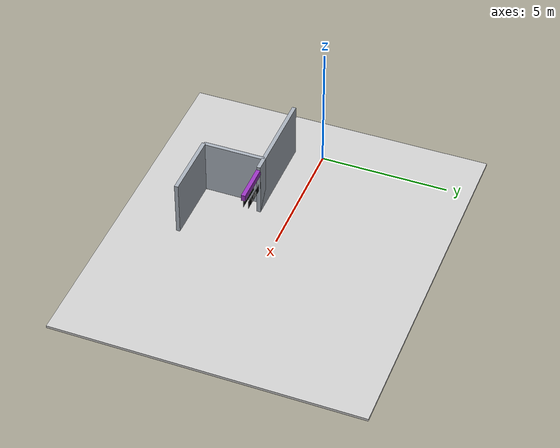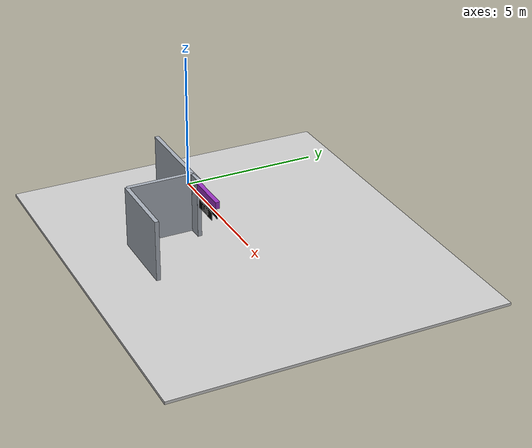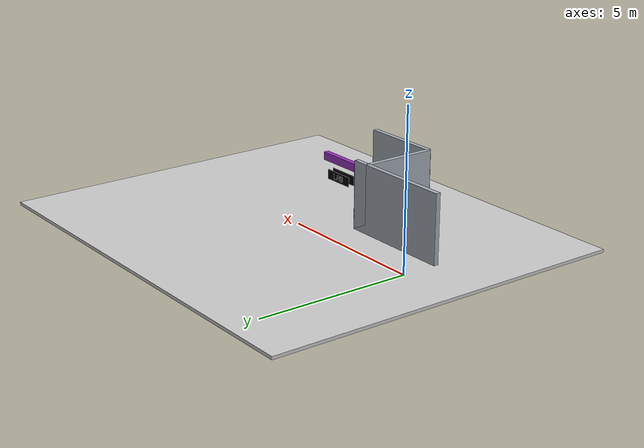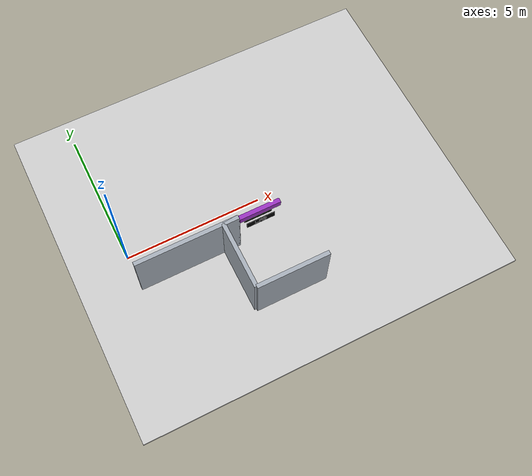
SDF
<sdf version="1.9">
 <world name="default">
  <model name="ground_plane">
   <static>true</static>
   <pose>4.95 0 -0.05 0 0 0</pose>
   <link name="body">
    <collision name="collision"><geometry><box><size>13.9 12 0.1</size></box></geometry></collision>
    <visual name="visual">
     <geometry><box><size>13.9 12 0.1</size></box></geometry>
     <material><ambient>0.8 0.8 0.8 1</ambient><diffuse>0.8 0.8 0.8 1</diffuse></material>
    </visual>
   </link>
  </model>
  <model name="hall_-1_1">
   <static>true</static>
   <pose>1.85 -1.2 1.1 0 0 0</pose>
   <link name="body">
    <collision name="collision"><geometry><box><size>3.7 0.15 2.2</size></box></geometry></collision>
    <visual name="visual">
     <geometry><box><size>3.7 0.15 2.2</size></box></geometry>
     <material><ambient>0.65 0.68 0.72 1</ambient><diffuse>0.65 0.68 0.72 1</diffuse></material>
    </visual>
   </link>
  </model>
  <model name="room_-1_1_-1">
   <static>true</static>
   <pose>3.1500000000000004 -2.4 1.1 0 0 0</pose>
   <link name="body">
    <collision name="collision"><geometry><box><size>0.15 2.4 2.2</size></box></geometry></collision>
    <visual name="visual">
     <geometry><box><size>0.15 2.4 2.2</size></box></geometry>
     <material><ambient>0.65 0.68 0.72 1</ambient><diffuse>0.65 0.68 0.72 1</diffuse></material>
    </visual>
   </link>
  </model>
  <model name="room_end_-1_1">
   <static>true</static>
   <pose>4.45 -3.5999999999999996 1.1 0 0 0</pose>
   <link name="body">
    <collision name="collision"><geometry><box><size>2.6 0.15 2.2</size></box></geometry></collision>
    <visual name="visual">
     <geometry><box><size>2.6 0.15 2.2</size></box></geometry>
     <material><ambient>0.65 0.68 0.72 1</ambient><diffuse>0.65 0.68 0.72 1</diffuse></material>
    </visual>
   </link>
  </model>
  <model name="jamb_-1_1_-1">
   <static>true</static>
   <pose>3.4250000000000003 -1.2 1.1 0 0 0</pose>
   <link name="body">
    <collision name="collision"><geometry><box><size>0.55 0.15 2.2</size></box></geometry></collision>
    <visual name="visual">
     <geometry><box><size>0.55 0.15 2.2</size></box></geometry>
     <material><ambient>0.65 0.68 0.72 1</ambient><diffuse>0.65 0.68 0.72 1</diffuse></material>
    </visual>
   </link>
  </model>
  <model name="r3geo_base_r007_right_1_lintel">
   <static>true</static>
   <pose>4.45 -1.2 1.95 0 0 0</pose>
   <link name="body">
    <collision name="collision"><geometry><box><size>1.5 0.16 0.25</size></box></geometry></collision>
    <visual name="visual">
     <geometry><box><size>1.5 0.16 0.25</size></box></geometry>
     <material><ambient>0.6 0.2 0.75 1</ambient><diffuse>0.6 0.2 0.75 1</diffuse></material>
    </visual>
   </link>
  </model>
  <model name="readable_r3geo_base_r007_right_1_entrance_corridor">
   <static>true</static>
   <pose>4.45 -1.1 1.43 0 0 3.14159265359</pose>
   <link name="lettering">
    <visual name="backboard">
     <geometry><box><size>1.02 0.018 0.3</size></box></geometry>
     <material>
      <ambient>.015 .015 .015 1</ambient>
      <diffuse>.015 .015 .015 1</diffuse>
      <emissive>.015 .015 .015 1</emissive>
     </material>
     <cast_shadows>false</cast_shadows>
    </visual>
    <visual name="letter_0_0_0">
     <pose>-0.208 -0.014 0.078 0 0 0</pose>
     <geometry><box><size>0.024439999999999996 0.008 0.024439999999999996</size></box></geometry>
     <material>
      <ambient>.96 .96 .96 1</ambient>
      <diffuse>.96 .96 .96 1</diffuse>
      <emissive>.96 .96 .96 1</emissive>
     </material>
     <cast_shadows>false</cast_shadows>
    </visual>
    <visual name="letter_0_1_0">
     <pose>-0.208 -0.014 0.052 0 0 0</pose>
     <geometry><box><size>0.024439999999999996 0.008 0.024439999999999996</size></box></geometry>
     <material>
      <ambient>.96 .96 .96 1</ambient>
      <diffuse>.96 .96 .96 1</diffuse>
      <emissive>.96 .96 .96 1</emissive>
     </material>
     <cast_shadows>false</cast_shadows>
    </visual>
    <visual name="letter_0_2_0">
     <pose>-0.208 -0.014 0.026 0 0 0</pose>
     <geometry><box><size>0.024439999999999996 0.008 0.024439999999999996</size></box></geometry>
     <material>
      <ambient>.96 .96 .96 1</ambient>
      <diffuse>.96 .96 .96 1</diffuse>
      <emissive>.96 .96 .96 1</emissive>
     </material>
     <cast_shadows>false</cast_shadows>
    </visual>
    <visual name="letter_0_3_0">
     <pose>-0.208 -0.014 0 0 0 0</pose>
     <geometry><box><size>0.024439999999999996 0.008 0.024439999999999996</size></box></geometry>
     <material>
      <ambient>.96 .96 .96 1</ambient>
      <diffuse>.96 .96 .96 1</diffuse>
      <emissive>.96 .96 .96 1</emissive>
     </material>
     <cast_shadows>false</cast_shadows>
    </visual>
    <visual name="letter_0_4_0">
     <pose>-0.208 -0.014 -0.026 0 0 0</pose>
     <geometry><box><size>0.024439999999999996 0.008 0.024439999999999996</size></box></geometry>
     <material>
      <ambient>.96 .96 .96 1</ambient>
      <diffuse>.96 .96 .96 1</diffuse>
      <emissive>.96 .96 .96 1</emissive>
     </material>
     <cast_shadows>false</cast_shadows>
    </visual>
    <visual name="letter_0_5_0">
     <pose>-0.208 -0.014 -0.052 0 0 0</pose>
     <geometry><box><size>0.024439999999999996 0.008 0.024439999999999996</size></box></geometry>
     <material>
      <ambient>.96 .96 .96 1</ambient>
      <diffuse>.96 .96 .96 1</diffuse>
      <emissive>.96 .96 .96 1</emissive>
     </material>
     <cast_shadows>false</cast_shadows>
    </visual>
    <visual name="letter_0_6_0">
     <pose>-0.208 -0.014 -0.078 0 0 0</pose>
     <geometry><box><size>0.024439999999999996 0.008 0.024439999999999996</size></box></geometry>
     <material>
      <ambient>.96 .96 .96 1</ambient>
      <diffuse>.96 .96 .96 1</diffuse>
      <emissive>.96 .96 .96 1</emissive>
     </material>
     <cast_shadows>false</cast_shadows>
    </visual>
    <visual name="letter_0_6_1">
     <pose>-0.182 -0.014 -0.078 0 0 0</pose>
     <geometry><box><size>0.024439999999999996 0.008 0.024439999999999996</size></box></geometry>
     <material>
      <ambient>.96 .96 .96 1</ambient>
      <diffuse>.96 .96 .96 1</diffuse>
      <emissive>.96 .96 .96 1</emissive>
     </material>
     <cast_shadows>false</cast_shadows>
    </visual>
    <visual name="letter_0_6_2">
     <pose>-0.156 -0.014 -0.078 0 0 0</pose>
     <geometry><box><size>0.024439999999999996 0.008 0.024439999999999996</size></box></geometry>
     <material>
      <ambient>.96 .96 .96 1</ambient>
      <diffuse>.96 .96 .96 1</diffuse>
      <emissive>.96 .96 .96 1</emissive>
     </material>
     <cast_shadows>false</cast_shadows>
    </visual>
    <visual name="letter_0_6_3">
     <pose>-0.13 -0.014 -0.078 0 0 0</pose>
     <geometry><box><size>0.024439999999999996 0.008 0.024439999999999996</size></box></geometry>
     <material>
      <ambient>.96 .96 .96 1</ambient>
      <diffuse>.96 .96 .96 1</diffuse>
      <emissive>.96 .96 .96 1</emissive>
     </material>
     <cast_shadows>false</cast_shadows>
    </visual>
    <visual name="letter_0_6_4">
     <pose>-0.104 -0.014 -0.078 0 0 0</pose>
     <geometry><box><size>0.024439999999999996 0.008 0.024439999999999996</size></box></geometry>
     <material>
      <ambient>.96 .96 .96 1</ambient>
      <diffuse>.96 .96 .96 1</diffuse>
      <emissive>.96 .96 .96 1</emissive>
     </material>
     <cast_shadows>false</cast_shadows>
    </visual>
    <visual name="letter_1_0_1">
     <pose>-0.026 -0.014 0.078 0 0 0</pose>
     <geometry><box><size>0.024439999999999996 0.008 0.024439999999999996</size></box></geometry>
     <material>
      <ambient>.96 .96 .96 1</ambient>
      <diffuse>.96 .96 .96 1</diffuse>
      <emissive>.96 .96 .96 1</emissive>
     </material>
     <cast_shadows>false</cast_shadows>
    </visual>
    <visual name="letter_1_0_2">
     <pose>0 -0.014 0.078 0 0 0</pose>
     <geometry><box><size>0.024439999999999996 0.008 0.024439999999999996</size></box></geometry>
     <material>
      <ambient>.96 .96 .96 1</ambient>
      <diffuse>.96 .96 .96 1</diffuse>
      <emissive>.96 .96 .96 1</emissive>
     </material>
     <cast_shadows>false</cast_shadows>
    </visual>
    <visual name="letter_1_0_3">
     <pose>0.026 -0.014 0.078 0 0 0</pose>
     <geometry><box><size>0.024439999999999996 0.008 0.024439999999999996</size></box></geometry>
     <material>
      <ambient>.96 .96 .96 1</ambient>
      <diffuse>.96 .96 .96 1</diffuse>
      <emissive>.96 .96 .96 1</emissive>
     </material>
     <cast_shadows>false</cast_shadows>
    </visual>
    <visual name="letter_1_1_0">
     <pose>-0.052 -0.014 0.052 0 0 0</pose>
     <geometry><box><size>0.024439999999999996 0.008 0.024439999999999996</size></box></geometry>
     <material>
      <ambient>.96 .96 .96 1</ambient>
      <diffuse>.96 .96 .96 1</diffuse>
      <emissive>.96 .96 .96 1</emissive>
     </material>
     <cast_shadows>false</cast_shadows>
    </visual>
    <visual name="letter_1_1_4">
     <pose>0.052 -0.014 0.052 0 0 0</pose>
     <geometry><box><size>0.024439999999999996 0.008 0.024439999999999996</size></box></geometry>
     <material>
      <ambient>.96 .96 .96 1</ambient>
      <diffuse>.96 .96 .96 1</diffuse>
      <emissive>.96 .96 .96 1</emissive>
     </material>
     <cast_shadows>false</cast_shadows>
    </visual>
    <visual name="letter_1_2_0">
     <pose>-0.052 -0.014 0.026 0 0 0</pose>
     <geometry><box><size>0.024439999999999996 0.008 0.024439999999999996</size></box></geometry>
     <material>
      <ambient>.96 .96 .96 1</ambient>
      <diffuse>.96 .96 .96 1</diffuse>
      <emissive>.96 .96 .96 1</emissive>
     </material>
     <cast_shadows>false</cast_shadows>
    </visual>
    <visual name="letter_1_2_4">
     <pose>0.052 -0.014 0.026 0 0 0</pose>
     <geometry><box><size>0.024439999999999996 0.008 0.024439999999999996</size></box></geometry>
     <material>
      <ambient>.96 .96 .96 1</ambient>
      <diffuse>.96 .96 .96 1</diffuse>
      <emissive>.96 .96 .96 1</emissive>
     </material>
     <cast_shadows>false</cast_shadows>
    </visual>
    <visual name="letter_1_3_0">
     <pose>-0.052 -0.014 0 0 0 0</pose>
     <geometry><box><size>0.024439999999999996 0.008 0.024439999999999996</size></box></geometry>
     <material>
      <ambient>.96 .96 .96 1</ambient>
      <diffuse>.96 .96 .96 1</diffuse>
      <emissive>.96 .96 .96 1</emissive>
     </material>
     <cast_shadows>false</cast_shadows>
    </visual>
    <visual name="letter_1_3_1">
     <pose>-0.026 -0.014 0 0 0 0</pose>
     <geometry><box><size>0.024439999999999996 0.008 0.024439999999999996</size></box></geometry>
     <material>
      <ambient>.96 .96 .96 1</ambient>
      <diffuse>.96 .96 .96 1</diffuse>
      <emissive>.96 .96 .96 1</emissive>
     </material>
     <cast_shadows>false</cast_shadows>
    </visual>
    <visual name="letter_1_3_2">
     <pose>0 -0.014 0 0 0 0</pose>
     <geometry><box><size>0.024439999999999996 0.008 0.024439999999999996</size></box></geometry>
     <material>
      <ambient>.96 .96 .96 1</ambient>
      <diffuse>.96 .96 .96 1</diffuse>
      <emissive>.96 .96 .96 1</emissive>
     </material>
     <cast_shadows>false</cast_shadows>
    </visual>
    <visual name="letter_1_3_3">
     <pose>0.026 -0.014 0 0 0 0</pose>
     <geometry><box><size>0.024439999999999996 0.008 0.024439999999999996</size></box></geometry>
     <material>
      <ambient>.96 .96 .96 1</ambient>
      <diffuse>.96 .96 .96 1</diffuse>
      <emissive>.96 .96 .96 1</emissive>
     </material>
     <cast_shadows>false</cast_shadows>
    </visual>
    <visual name="letter_1_3_4">
     <pose>0.052 -0.014 0 0 0 0</pose>
     <geometry><box><size>0.024439999999999996 0.008 0.024439999999999996</size></box></geometry>
     <material>
      <ambient>.96 .96 .96 1</ambient>
      <diffuse>.96 .96 .96 1</diffuse>
      <emissive>.96 .96 .96 1</emissive>
     </material>
     <cast_shadows>false</cast_shadows>
    </visual>
    <visual name="letter_1_4_0">
     <pose>-0.052 -0.014 -0.026 0 0 0</pose>
     <geometry><box><size>0.024439999999999996 0.008 0.024439999999999996</size></box></geometry>
     <material>
      <ambient>.96 .96 .96 1</ambient>
      <diffuse>.96 .96 .96 1</diffuse>
      <emissive>.96 .96 .96 1</emissive>
     </material>
     <cast_shadows>false</cast_shadows>
    </visual>
    <visual name="letter_1_4_4">
     <pose>0.052 -0.014 -0.026 0 0 0</pose>
     <geometry><box><size>0.024439999999999996 0.008 0.024439999999999996</size></box></geometry>
     <material>
      <ambient>.96 .96 .96 1</ambient>
      <diffuse>.96 .96 .96 1</diffuse>
      <emissive>.96 .96 .96 1</emissive>
     </material>
     <cast_shadows>false</cast_shadows>
    </visual>
    <visual name="letter_1_5_0">
     <pose>-0.052 -0.014 -0.052 0 0 0</pose>
     <geometry><box><size>0.024439999999999996 0.008 0.024439999999999996</size></box></geometry>
     <material>
      <ambient>.96 .96 .96 1</ambient>
      <diffuse>.96 .96 .96 1</diffuse>
      <emissive>.96 .96 .96 1</emissive>
     </material>
     <cast_shadows>false</cast_shadows>
    </visual>
    <visual name="letter_1_5_4">
     <pose>0.052 -0.014 -0.052 0 0 0</pose>
     <geometry><box><size>0.024439999999999996 0.008 0.024439999999999996</size></box></geometry>
     <material>
      <ambient>.96 .96 .96 1</ambient>
      <diffuse>.96 .96 .96 1</diffuse>
      <emissive>.96 .96 .96 1</emissive>
     </material>
     <cast_shadows>false</cast_shadows>
    </visual>
    <visual name="letter_1_6_0">
     <pose>-0.052 -0.014 -0.078 0 0 0</pose>
     <geometry><box><size>0.024439999999999996 0.008 0.024439999999999996</size></box></geometry>
     <material>
      <ambient>.96 .96 .96 1</ambient>
      <diffuse>.96 .96 .96 1</diffuse>
      <emissive>.96 .96 .96 1</emissive>
     </material>
     <cast_shadows>false</cast_shadows>
    </visual>
    <visual name="letter_1_6_4">
     <pose>0.052 -0.014 -0.078 0 0 0</pose>
     <geometry><box><size>0.024439999999999996 0.008 0.024439999999999996</size></box></geometry>
     <material>
      <ambient>.96 .96 .96 1</ambient>
      <diffuse>.96 .96 .96 1</diffuse>
      <emissive>.96 .96 .96 1</emissive>
     </material>
     <cast_shadows>false</cast_shadows>
    </visual>
    <visual name="letter_2_0_0">
     <pose>0.104 -0.014 0.078 0 0 0</pose>
     <geometry><box><size>0.024439999999999996 0.008 0.024439999999999996</size></box></geometry>
     <material>
      <ambient>.96 .96 .96 1</ambient>
      <diffuse>.96 .96 .96 1</diffuse>
      <emissive>.96 .96 .96 1</emissive>
     </material>
     <cast_shadows>false</cast_shadows>
    </visual>
    <visual name="letter_2_0_1">
     <pose>0.13 -0.014 0.078 0 0 0</pose>
     <geometry><box><size>0.024439999999999996 0.008 0.024439999999999996</size></box></geometry>
     <material>
      <ambient>.96 .96 .96 1</ambient>
      <diffuse>.96 .96 .96 1</diffuse>
      <emissive>.96 .96 .96 1</emissive>
     </material>
     <cast_shadows>false</cast_shadows>
    </visual>
    <visual name="letter_2_0_2">
     <pose>0.156 -0.014 0.078 0 0 0</pose>
     <geometry><box><size>0.024439999999999996 0.008 0.024439999999999996</size></box></geometry>
     <material>
      <ambient>.96 .96 .96 1</ambient>
      <diffuse>.96 .96 .96 1</diffuse>
      <emissive>.96 .96 .96 1</emissive>
     </material>
     <cast_shadows>false</cast_shadows>
    </visual>
    <visual name="letter_2_0_3">
     <pose>0.182 -0.014 0.078 0 0 0</pose>
     <geometry><box><size>0.024439999999999996 0.008 0.024439999999999996</size></box></geometry>
     <material>
      <ambient>.96 .96 .96 1</ambient>
      <diffuse>.96 .96 .96 1</diffuse>
      <emissive>.96 .96 .96 1</emissive>
     </material>
     <cast_shadows>false</cast_shadows>
    </visual>
    <visual name="letter_2_1_0">
     <pose>0.104 -0.014 0.052 0 0 0</pose>
     <geometry><box><size>0.024439999999999996 0.008 0.024439999999999996</size></box></geometry>
     <material>
      <ambient>.96 .96 .96 1</ambient>
      <diffuse>.96 .96 .96 1</diffuse>
      <emissive>.96 .96 .96 1</emissive>
     </material>
     <cast_shadows>false</cast_shadows>
    </visual>
    <visual name="letter_2_1_4">
     <pose>0.208 -0.014 0.052 0 0 0</pose>
     <geometry><box><size>0.024439999999999996 0.008 0.024439999999999996</size></box></geometry>
     <material>
      <ambient>.96 .96 .96 1</ambient>
      <diffuse>.96 .96 .96 1</diffuse>
      <emissive>.96 .96 .96 1</emissive>
     </material>
     <cast_shadows>false</cast_shadows>
    </visual>
    <visual name="letter_2_2_0">
     <pose>0.104 -0.014 0.026 0 0 0</pose>
     <geometry><box><size>0.024439999999999996 0.008 0.024439999999999996</size></box></geometry>
     <material>
      <ambient>.96 .96 .96 1</ambient>
      <diffuse>.96 .96 .96 1</diffuse>
      <emissive>.96 .96 .96 1</emissive>
     </material>
     <cast_shadows>false</cast_shadows>
    </visual>
    <visual name="letter_2_2_4">
     <pose>0.208 -0.014 0.026 0 0 0</pose>
     <geometry><box><size>0.024439999999999996 0.008 0.024439999999999996</size></box></geometry>
     <material>
      <ambient>.96 .96 .96 1</ambient>
      <diffuse>.96 .96 .96 1</diffuse>
      <emissive>.96 .96 .96 1</emissive>
     </material>
     <cast_shadows>false</cast_shadows>
    </visual>
    <visual name="letter_2_3_0">
     <pose>0.104 -0.014 0 0 0 0</pose>
     <geometry><box><size>0.024439999999999996 0.008 0.024439999999999996</size></box></geometry>
     <material>
      <ambient>.96 .96 .96 1</ambient>
      <diffuse>.96 .96 .96 1</diffuse>
      <emissive>.96 .96 .96 1</emissive>
     </material>
     <cast_shadows>false</cast_shadows>
    </visual>
    <visual name="letter_2_3_1">
     <pose>0.13 -0.014 0 0 0 0</pose>
     <geometry><box><size>0.024439999999999996 0.008 0.024439999999999996</size></box></geometry>
     <material>
      <ambient>.96 .96 .96 1</ambient>
      <diffuse>.96 .96 .96 1</diffuse>
      <emissive>.96 .96 .96 1</emissive>
     </material>
     <cast_shadows>false</cast_shadows>
    </visual>
    <visual name="letter_2_3_2">
     <pose>0.156 -0.014 0 0 0 0</pose>
     <geometry><box><size>0.024439999999999996 0.008 0.024439999999999996</size></box></geometry>
     <material>
      <ambient>.96 .96 .96 1</ambient>
      <diffuse>.96 .96 .96 1</diffuse>
      <emissive>.96 .96 .96 1</emissive>
     </material>
     <cast_shadows>false</cast_shadows>
    </visual>
    <visual name="letter_2_3_3">
     <pose>0.182 -0.014 0 0 0 0</pose>
     <geometry><box><size>0.024439999999999996 0.008 0.024439999999999996</size></box></geometry>
     <material>
      <ambient>.96 .96 .96 1</ambient>
      <diffuse>.96 .96 .96 1</diffuse>
      <emissive>.96 .96 .96 1</emissive>
     </material>
     <cast_shadows>false</cast_shadows>
    </visual>
    <visual name="letter_2_4_0">
     <pose>0.104 -0.014 -0.026 0 0 0</pose>
     <geometry><box><size>0.024439999999999996 0.008 0.024439999999999996</size></box></geometry>
     <material>
      <ambient>.96 .96 .96 1</ambient>
      <diffuse>.96 .96 .96 1</diffuse>
      <emissive>.96 .96 .96 1</emissive>
     </material>
     <cast_shadows>false</cast_shadows>
    </visual>
    <visual name="letter_2_4_4">
     <pose>0.208 -0.014 -0.026 0 0 0</pose>
     <geometry><box><size>0.024439999999999996 0.008 0.024439999999999996</size></box></geometry>
     <material>
      <ambient>.96 .96 .96 1</ambient>
      <diffuse>.96 .96 .96 1</diffuse>
      <emissive>.96 .96 .96 1</emissive>
     </material>
     <cast_shadows>false</cast_shadows>
    </visual>
    <visual name="letter_2_5_0">
     <pose>0.104 -0.014 -0.052 0 0 0</pose>
     <geometry><box><size>0.024439999999999996 0.008 0.024439999999999996</size></box></geometry>
     <material>
      <ambient>.96 .96 .96 1</ambient>
      <diffuse>.96 .96 .96 1</diffuse>
      <emissive>.96 .96 .96 1</emissive>
     </material>
     <cast_shadows>false</cast_shadows>
    </visual>
    <visual name="letter_2_5_4">
     <pose>0.208 -0.014 -0.052 0 0 0</pose>
     <geometry><box><size>0.024439999999999996 0.008 0.024439999999999996</size></box></geometry>
     <material>
      <ambient>.96 .96 .96 1</ambient>
      <diffuse>.96 .96 .96 1</diffuse>
      <emissive>.96 .96 .96 1</emissive>
     </material>
     <cast_shadows>false</cast_shadows>
    </visual>
    <visual name="letter_2_6_0">
     <pose>0.104 -0.014 -0.078 0 0 0</pose>
     <geometry><box><size>0.024439999999999996 0.008 0.024439999999999996</size></box></geometry>
     <material>
      <ambient>.96 .96 .96 1</ambient>
      <diffuse>.96 .96 .96 1</diffuse>
      <emissive>.96 .96 .96 1</emissive>
     </material>
     <cast_shadows>false</cast_shadows>
    </visual>
    <visual name="letter_2_6_1">
     <pose>0.13 -0.014 -0.078 0 0 0</pose>
     <geometry><box><size>0.024439999999999996 0.008 0.024439999999999996</size></box></geometry>
     <material>
      <ambient>.96 .96 .96 1</ambient>
      <diffuse>.96 .96 .96 1</diffuse>
      <emissive>.96 .96 .96 1</emissive>
     </material>
     <cast_shadows>false</cast_shadows>
    </visual>
    <visual name="letter_2_6_2">
     <pose>0.156 -0.014 -0.078 0 0 0</pose>
     <geometry><box><size>0.024439999999999996 0.008 0.024439999999999996</size></box></geometry>
     <material>
      <ambient>.96 .96 .96 1</ambient>
      <diffuse>.96 .96 .96 1</diffuse>
      <emissive>.96 .96 .96 1</emissive>
     </material>
     <cast_shadows>false</cast_shadows>
    </visual>
    <visual name="letter_2_6_3">
     <pose>0.182 -0.014 -0.078 0 0 0</pose>
     <geometry><box><size>0.024439999999999996 0.008 0.024439999999999996</size></box></geometry>
     <material>
      <ambient>.96 .96 .96 1</ambient>
      <diffuse>.96 .96 .96 1</diffuse>
      <emissive>.96 .96 .96 1</emissive>
     </material>
     <cast_shadows>false</cast_shadows>
    </visual>
   </link>
  </model>
  <model name="readable_r3geo_base_r007_right_1_entrance_room">
   <static>true</static>
   <pose>4.45 -1.3 1.43 0 0 0</pose>
   <link name="lettering">
    <visual name="backboard">
     <geometry><box><size>1.02 0.018 0.3</size></box></geometry>
     <material>
      <ambient>.015 .015 .015 1</ambient>
      <diffuse>.015 .015 .015 1</diffuse>
      <emissive>.015 .015 .015 1</emissive>
     </material>
     <cast_shadows>false</cast_shadows>
    </visual>
    <visual name="letter_0_0_0">
     <pose>-0.208 -0.014 0.078 0 0 0</pose>
     <geometry><box><size>0.024439999999999996 0.008 0.024439999999999996</size></box></geometry>
     <material>
      <ambient>.96 .96 .96 1</ambient>
      <diffuse>.96 .96 .96 1</diffuse>
      <emissive>.96 .96 .96 1</emissive>
     </material>
     <cast_shadows>false</cast_shadows>
    </visual>
    <visual name="letter_0_1_0">
     <pose>-0.208 -0.014 0.052 0 0 0</pose>
     <geometry><box><size>0.024439999999999996 0.008 0.024439999999999996</size></box></geometry>
     <material>
      <ambient>.96 .96 .96 1</ambient>
      <diffuse>.96 .96 .96 1</diffuse>
      <emissive>.96 .96 .96 1</emissive>
     </material>
     <cast_shadows>false</cast_shadows>
    </visual>
    <visual name="letter_0_2_0">
     <pose>-0.208 -0.014 0.026 0 0 0</pose>
     <geometry><box><size>0.024439999999999996 0.008 0.024439999999999996</size></box></geometry>
     <material>
      <ambient>.96 .96 .96 1</ambient>
      <diffuse>.96 .96 .96 1</diffuse>
      <emissive>.96 .96 .96 1</emissive>
     </material>
     <cast_shadows>false</cast_shadows>
    </visual>
    <visual name="letter_0_3_0">
     <pose>-0.208 -0.014 0 0 0 0</pose>
     <geometry><box><size>0.024439999999999996 0.008 0.024439999999999996</size></box></geometry>
     <material>
      <ambient>.96 .96 .96 1</ambient>
      <diffuse>.96 .96 .96 1</diffuse>
      <emissive>.96 .96 .96 1</emissive>
     </material>
     <cast_shadows>false</cast_shadows>
    </visual>
    <visual name="letter_0_4_0">
     <pose>-0.208 -0.014 -0.026 0 0 0</pose>
     <geometry><box><size>0.024439999999999996 0.008 0.024439999999999996</size></box></geometry>
     <material>
      <ambient>.96 .96 .96 1</ambient>
      <diffuse>.96 .96 .96 1</diffuse>
      <emissive>.96 .96 .96 1</emissive>
     </material>
     <cast_shadows>false</cast_shadows>
    </visual>
    <visual name="letter_0_5_0">
     <pose>-0.208 -0.014 -0.052 0 0 0</pose>
     <geometry><box><size>0.024439999999999996 0.008 0.024439999999999996</size></box></geometry>
     <material>
      <ambient>.96 .96 .96 1</ambient>
      <diffuse>.96 .96 .96 1</diffuse>
      <emissive>.96 .96 .96 1</emissive>
     </material>
     <cast_shadows>false</cast_shadows>
    </visual>
    <visual name="letter_0_6_0">
     <pose>-0.208 -0.014 -0.078 0 0 0</pose>
     <geometry><box><size>0.024439999999999996 0.008 0.024439999999999996</size></box></geometry>
     <material>
      <ambient>.96 .96 .96 1</ambient>
      <diffuse>.96 .96 .96 1</diffuse>
      <emissive>.96 .96 .96 1</emissive>
     </material>
     <cast_shadows>false</cast_shadows>
    </visual>
    <visual name="letter_0_6_1">
     <pose>-0.182 -0.014 -0.078 0 0 0</pose>
     <geometry><box><size>0.024439999999999996 0.008 0.024439999999999996</size></box></geometry>
     <material>
      <ambient>.96 .96 .96 1</ambient>
      <diffuse>.96 .96 .96 1</diffuse>
      <emissive>.96 .96 .96 1</emissive>
     </material>
     <cast_shadows>false</cast_shadows>
    </visual>
    <visual name="letter_0_6_2">
     <pose>-0.156 -0.014 -0.078 0 0 0</pose>
     <geometry><box><size>0.024439999999999996 0.008 0.024439999999999996</size></box></geometry>
     <material>
      <ambient>.96 .96 .96 1</ambient>
      <diffuse>.96 .96 .96 1</diffuse>
      <emissive>.96 .96 .96 1</emissive>
     </material>
     <cast_shadows>false</cast_shadows>
    </visual>
    <visual name="letter_0_6_3">
     <pose>-0.13 -0.014 -0.078 0 0 0</pose>
     <geometry><box><size>0.024439999999999996 0.008 0.024439999999999996</size></box></geometry>
     <material>
      <ambient>.96 .96 .96 1</ambient>
      <diffuse>.96 .96 .96 1</diffuse>
      <emissive>.96 .96 .96 1</emissive>
     </material>
     <cast_shadows>false</cast_shadows>
    </visual>
    <visual name="letter_0_6_4">
     <pose>-0.104 -0.014 -0.078 0 0 0</pose>
     <geometry><box><size>0.024439999999999996 0.008 0.024439999999999996</size></box></geometry>
     <material>
      <ambient>.96 .96 .96 1</ambient>
      <diffuse>.96 .96 .96 1</diffuse>
      <emissive>.96 .96 .96 1</emissive>
     </material>
     <cast_shadows>false</cast_shadows>
    </visual>
    <visual name="letter_1_0_1">
     <pose>-0.026 -0.014 0.078 0 0 0</pose>
     <geometry><box><size>0.024439999999999996 0.008 0.024439999999999996</size></box></geometry>
     <material>
      <ambient>.96 .96 .96 1</ambient>
      <diffuse>.96 .96 .96 1</diffuse>
      <emissive>.96 .96 .96 1</emissive>
     </material>
     <cast_shadows>false</cast_shadows>
    </visual>
    <visual name="letter_1_0_2">
     <pose>0 -0.014 0.078 0 0 0</pose>
     <geometry><box><size>0.024439999999999996 0.008 0.024439999999999996</size></box></geometry>
     <material>
      <ambient>.96 .96 .96 1</ambient>
      <diffuse>.96 .96 .96 1</diffuse>
      <emissive>.96 .96 .96 1</emissive>
     </material>
     <cast_shadows>false</cast_shadows>
    </visual>
    <visual name="letter_1_0_3">
     <pose>0.026 -0.014 0.078 0 0 0</pose>
     <geometry><box><size>0.024439999999999996 0.008 0.024439999999999996</size></box></geometry>
     <material>
      <ambient>.96 .96 .96 1</ambient>
      <diffuse>.96 .96 .96 1</diffuse>
      <emissive>.96 .96 .96 1</emissive>
     </material>
     <cast_shadows>false</cast_shadows>
    </visual>
    <visual name="letter_1_1_0">
     <pose>-0.052 -0.014 0.052 0 0 0</pose>
     <geometry><box><size>0.024439999999999996 0.008 0.024439999999999996</size></box></geometry>
     <material>
      <ambient>.96 .96 .96 1</ambient>
      <diffuse>.96 .96 .96 1</diffuse>
      <emissive>.96 .96 .96 1</emissive>
     </material>
     <cast_shadows>false</cast_shadows>
    </visual>
    <visual name="letter_1_1_4">
     <pose>0.052 -0.014 0.052 0 0 0</pose>
     <geometry><box><size>0.024439999999999996 0.008 0.024439999999999996</size></box></geometry>
     <material>
      <ambient>.96 .96 .96 1</ambient>
      <diffuse>.96 .96 .96 1</diffuse>
      <emissive>.96 .96 .96 1</emissive>
     </material>
     <cast_shadows>false</cast_shadows>
    </visual>
    <visual name="letter_1_2_0">
     <pose>-0.052 -0.014 0.026 0 0 0</pose>
     <geometry><box><size>0.024439999999999996 0.008 0.024439999999999996</size></box></geometry>
     <material>
      <ambient>.96 .96 .96 1</ambient>
      <diffuse>.96 .96 .96 1</diffuse>
      <emissive>.96 .96 .96 1</emissive>
     </material>
     <cast_shadows>false</cast_shadows>
    </visual>
    <visual name="letter_1_2_4">
     <pose>0.052 -0.014 0.026 0 0 0</pose>
     <geometry><box><size>0.024439999999999996 0.008 0.024439999999999996</size></box></geometry>
     <material>
      <ambient>.96 .96 .96 1</ambient>
      <diffuse>.96 .96 .96 1</diffuse>
      <emissive>.96 .96 .96 1</emissive>
     </material>
     <cast_shadows>false</cast_shadows>
    </visual>
    <visual name="letter_1_3_0">
     <pose>-0.052 -0.014 0 0 0 0</pose>
     <geometry><box><size>0.024439999999999996 0.008 0.024439999999999996</size></box></geometry>
     <material>
      <ambient>.96 .96 .96 1</ambient>
      <diffuse>.96 .96 .96 1</diffuse>
      <emissive>.96 .96 .96 1</emissive>
     </material>
     <cast_shadows>false</cast_shadows>
    </visual>
    <visual name="letter_1_3_1">
     <pose>-0.026 -0.014 0 0 0 0</pose>
     <geometry><box><size>0.024439999999999996 0.008 0.024439999999999996</size></box></geometry>
     <material>
      <ambient>.96 .96 .96 1</ambient>
      <diffuse>.96 .96 .96 1</diffuse>
      <emissive>.96 .96 .96 1</emissive>
     </material>
     <cast_shadows>false</cast_shadows>
    </visual>
    <visual name="letter_1_3_2">
     <pose>0 -0.014 0 0 0 0</pose>
     <geometry><box><size>0.024439999999999996 0.008 0.024439999999999996</size></box></geometry>
     <material>
      <ambient>.96 .96 .96 1</ambient>
      <diffuse>.96 .96 .96 1</diffuse>
      <emissive>.96 .96 .96 1</emissive>
     </material>
     <cast_shadows>false</cast_shadows>
    </visual>
    <visual name="letter_1_3_3">
     <pose>0.026 -0.014 0 0 0 0</pose>
     <geometry><box><size>0.024439999999999996 0.008 0.024439999999999996</size></box></geometry>
     <material>
      <ambient>.96 .96 .96 1</ambient>
      <diffuse>.96 .96 .96 1</diffuse>
      <emissive>.96 .96 .96 1</emissive>
     </material>
     <cast_shadows>false</cast_shadows>
    </visual>
    <visual name="letter_1_3_4">
     <pose>0.052 -0.014 0 0 0 0</pose>
     <geometry><box><size>0.024439999999999996 0.008 0.024439999999999996</size></box></geometry>
     <material>
      <ambient>.96 .96 .96 1</ambient>
      <diffuse>.96 .96 .96 1</diffuse>
      <emissive>.96 .96 .96 1</emissive>
     </material>
     <cast_shadows>false</cast_shadows>
    </visual>
    <visual name="letter_1_4_0">
     <pose>-0.052 -0.014 -0.026 0 0 0</pose>
     <geometry><box><size>0.024439999999999996 0.008 0.024439999999999996</size></box></geometry>
     <material>
      <ambient>.96 .96 .96 1</ambient>
      <diffuse>.96 .96 .96 1</diffuse>
      <emissive>.96 .96 .96 1</emissive>
     </material>
     <cast_shadows>false</cast_shadows>
    </visual>
    <visual name="letter_1_4_4">
     <pose>0.052 -0.014 -0.026 0 0 0</pose>
     <geometry><box><size>0.024439999999999996 0.008 0.024439999999999996</size></box></geometry>
     <material>
      <ambient>.96 .96 .96 1</ambient>
      <diffuse>.96 .96 .96 1</diffuse>
      <emissive>.96 .96 .96 1</emissive>
     </material>
     <cast_shadows>false</cast_shadows>
    </visual>
    <visual name="letter_1_5_0">
     <pose>-0.052 -0.014 -0.052 0 0 0</pose>
     <geometry><box><size>0.024439999999999996 0.008 0.024439999999999996</size></box></geometry>
     <material>
      <ambient>.96 .96 .96 1</ambient>
      <diffuse>.96 .96 .96 1</diffuse>
      <emissive>.96 .96 .96 1</emissive>
     </material>
     <cast_shadows>false</cast_shadows>
    </visual>
    <visual name="letter_1_5_4">
     <pose>0.052 -0.014 -0.052 0 0 0</pose>
     <geometry><box><size>0.024439999999999996 0.008 0.024439999999999996</size></box></geometry>
     <material>
      <ambient>.96 .96 .96 1</ambient>
      <diffuse>.96 .96 .96 1</diffuse>
      <emissive>.96 .96 .96 1</emissive>
     </material>
     <cast_shadows>false</cast_shadows>
    </visual>
    <visual name="letter_1_6_0">
     <pose>-0.052 -0.014 -0.078 0 0 0</pose>
     <geometry><box><size>0.024439999999999996 0.008 0.024439999999999996</size></box></geometry>
     <material>
      <ambient>.96 .96 .96 1</ambient>
      <diffuse>.96 .96 .96 1</diffuse>
      <emissive>.96 .96 .96 1</emissive>
     </material>
     <cast_shadows>false</cast_shadows>
    </visual>
    <visual name="letter_1_6_4">
     <pose>0.052 -0.014 -0.078 0 0 0</pose>
     <geometry><box><size>0.024439999999999996 0.008 0.024439999999999996</size></box></geometry>
     <material>
      <ambient>.96 .96 .96 1</ambient>
      <diffuse>.96 .96 .96 1</diffuse>
      <emissive>.96 .96 .96 1</emissive>
     </material>
     <cast_shadows>false</cast_shadows>
    </visual>
    <visual name="letter_2_0_0">
     <pose>0.104 -0.014 0.078 0 0 0</pose>
     <geometry><box><size>0.024439999999999996 0.008 0.024439999999999996</size></box></geometry>
     <material>
      <ambient>.96 .96 .96 1</ambient>
      <diffuse>.96 .96 .96 1</diffuse>
      <emissive>.96 .96 .96 1</emissive>
     </material>
     <cast_shadows>false</cast_shadows>
    </visual>
    <visual name="letter_2_0_1">
     <pose>0.13 -0.014 0.078 0 0 0</pose>
     <geometry><box><size>0.024439999999999996 0.008 0.024439999999999996</size></box></geometry>
     <material>
      <ambient>.96 .96 .96 1</ambient>
      <diffuse>.96 .96 .96 1</diffuse>
      <emissive>.96 .96 .96 1</emissive>
     </material>
     <cast_shadows>false</cast_shadows>
    </visual>
    <visual name="letter_2_0_2">
     <pose>0.156 -0.014 0.078 0 0 0</pose>
     <geometry><box><size>0.024439999999999996 0.008 0.024439999999999996</size></box></geometry>
     <material>
      <ambient>.96 .96 .96 1</ambient>
      <diffuse>.96 .96 .96 1</diffuse>
      <emissive>.96 .96 .96 1</emissive>
     </material>
     <cast_shadows>false</cast_shadows>
    </visual>
    <visual name="letter_2_0_3">
     <pose>0.182 -0.014 0.078 0 0 0</pose>
     <geometry><box><size>0.024439999999999996 0.008 0.024439999999999996</size></box></geometry>
     <material>
      <ambient>.96 .96 .96 1</ambient>
      <diffuse>.96 .96 .96 1</diffuse>
      <emissive>.96 .96 .96 1</emissive>
     </material>
     <cast_shadows>false</cast_shadows>
    </visual>
    <visual name="letter_2_1_0">
     <pose>0.104 -0.014 0.052 0 0 0</pose>
     <geometry><box><size>0.024439999999999996 0.008 0.024439999999999996</size></box></geometry>
     <material>
      <ambient>.96 .96 .96 1</ambient>
      <diffuse>.96 .96 .96 1</diffuse>
      <emissive>.96 .96 .96 1</emissive>
     </material>
     <cast_shadows>false</cast_shadows>
    </visual>
    <visual name="letter_2_1_4">
     <pose>0.208 -0.014 0.052 0 0 0</pose>
     <geometry><box><size>0.024439999999999996 0.008 0.024439999999999996</size></box></geometry>
     <material>
      <ambient>.96 .96 .96 1</ambient>
      <diffuse>.96 .96 .96 1</diffuse>
      <emissive>.96 .96 .96 1</emissive>
     </material>
     <cast_shadows>false</cast_shadows>
    </visual>
    <visual name="letter_2_2_0">
     <pose>0.104 -0.014 0.026 0 0 0</pose>
     <geometry><box><size>0.024439999999999996 0.008 0.024439999999999996</size></box></geometry>
     <material>
      <ambient>.96 .96 .96 1</ambient>
      <diffuse>.96 .96 .96 1</diffuse>
      <emissive>.96 .96 .96 1</emissive>
     </material>
     <cast_shadows>false</cast_shadows>
    </visual>
    <visual name="letter_2_2_4">
     <pose>0.208 -0.014 0.026 0 0 0</pose>
     <geometry><box><size>0.024439999999999996 0.008 0.024439999999999996</size></box></geometry>
     <material>
      <ambient>.96 .96 .96 1</ambient>
      <diffuse>.96 .96 .96 1</diffuse>
      <emissive>.96 .96 .96 1</emissive>
     </material>
     <cast_shadows>false</cast_shadows>
    </visual>
    <visual name="letter_2_3_0">
     <pose>0.104 -0.014 0 0 0 0</pose>
     <geometry><box><size>0.024439999999999996 0.008 0.024439999999999996</size></box></geometry>
     <material>
      <ambient>.96 .96 .96 1</ambient>
      <diffuse>.96 .96 .96 1</diffuse>
      <emissive>.96 .96 .96 1</emissive>
     </material>
     <cast_shadows>false</cast_shadows>
    </visual>
    <visual name="letter_2_3_1">
     <pose>0.13 -0.014 0 0 0 0</pose>
     <geometry><box><size>0.024439999999999996 0.008 0.024439999999999996</size></box></geometry>
     <material>
      <ambient>.96 .96 .96 1</ambient>
      <diffuse>.96 .96 .96 1</diffuse>
      <emissive>.96 .96 .96 1</emissive>
     </material>
     <cast_shadows>false</cast_shadows>
    </visual>
    <visual name="letter_2_3_2">
     <pose>0.156 -0.014 0 0 0 0</pose>
     <geometry><box><size>0.024439999999999996 0.008 0.024439999999999996</size></box></geometry>
     <material>
      <ambient>.96 .96 .96 1</ambient>
      <diffuse>.96 .96 .96 1</diffuse>
      <emissive>.96 .96 .96 1</emissive>
     </material>
     <cast_shadows>false</cast_shadows>
    </visual>
    <visual name="letter_2_3_3">
     <pose>0.182 -0.014 0 0 0 0</pose>
     <geometry><box><size>0.024439999999999996 0.008 0.024439999999999996</size></box></geometry>
     <material>
      <ambient>.96 .96 .96 1</ambient>
      <diffuse>.96 .96 .96 1</diffuse>
      <emissive>.96 .96 .96 1</emissive>
     </material>
     <cast_shadows>false</cast_shadows>
    </visual>
    <visual name="letter_2_4_0">
     <pose>0.104 -0.014 -0.026 0 0 0</pose>
     <geometry><box><size>0.024439999999999996 0.008 0.024439999999999996</size></box></geometry>
     <material>
      <ambient>.96 .96 .96 1</ambient>
      <diffuse>.96 .96 .96 1</diffuse>
      <emissive>.96 .96 .96 1</emissive>
     </material>
     <cast_shadows>false</cast_shadows>
    </visual>
    <visual name="letter_2_4_4">
     <pose>0.208 -0.014 -0.026 0 0 0</pose>
     <geometry><box><size>0.024439999999999996 0.008 0.024439999999999996</size></box></geometry>
     <material>
      <ambient>.96 .96 .96 1</ambient>
      <diffuse>.96 .96 .96 1</diffuse>
      <emissive>.96 .96 .96 1</emissive>
     </material>
     <cast_shadows>false</cast_shadows>
    </visual>
    <visual name="letter_2_5_0">
     <pose>0.104 -0.014 -0.052 0 0 0</pose>
     <geometry><box><size>0.024439999999999996 0.008 0.024439999999999996</size></box></geometry>
     <material>
      <ambient>.96 .96 .96 1</ambient>
      <diffuse>.96 .96 .96 1</diffuse>
      <emissive>.96 .96 .96 1</emissive>
     </material>
     <cast_shadows>false</cast_shadows>
    </visual>
    <visual name="letter_2_5_4">
     <pose>0.208 -0.014 -0.052 0 0 0</pose>
     <geometry><box><size>0.024439999999999996 0.008 0.024439999999999996</size></box></geometry>
     <material>
      <ambient>.96 .96 .96 1</ambient>
      <diffuse>.96 .96 .96 1</diffuse>
      <emissive>.96 .96 .96 1</emissive>
     </material>
     <cast_shadows>false</cast_shadows>
    </visual>
    <visual name="letter_2_6_0">
     <pose>0.104 -0.014 -0.078 0 0 0</pose>
     <geometry><box><size>0.024439999999999996 0.008 0.024439999999999996</size></box></geometry>
     <material>
      <ambient>.96 .96 .96 1</ambient>
      <diffuse>.96 .96 .96 1</diffuse>
      <emissive>.96 .96 .96 1</emissive>
     </material>
     <cast_shadows>false</cast_shadows>
    </visual>
    <visual name="letter_2_6_1">
     <pose>0.13 -0.014 -0.078 0 0 0</pose>
     <geometry><box><size>0.024439999999999996 0.008 0.024439999999999996</size></box></geometry>
     <material>
      <ambient>.96 .96 .96 1</ambient>
      <diffuse>.96 .96 .96 1</diffuse>
      <emissive>.96 .96 .96 1</emissive>
     </material>
     <cast_shadows>false</cast_shadows>
    </visual>
    <visual name="letter_2_6_2">
     <pose>0.156 -0.014 -0.078 0 0 0</pose>
     <geometry><box><size>0.024439999999999996 0.008 0.024439999999999996</size></box></geometry>
     <material>
      <ambient>.96 .96 .96 1</ambient>
      <diffuse>.96 .96 .96 1</diffuse>
      <emissive>.96 .96 .96 1</emissive>
     </material>
     <cast_shadows>false</cast_shadows>
    </visual>
    <visual name="letter_2_6_3">
     <pose>0.182 -0.014 -0.078 0 0 0</pose>
     <geometry><box><size>0.024439999999999996 0.008 0.024439999999999996</size></box></geometry>
     <material>
      <ambient>.96 .96 .96 1</ambient>
      <diffuse>.96 .96 .96 1</diffuse>
      <emissive>.96 .96 .96 1</emissive>
     </material>
     <cast_shadows>false</cast_shadows>
    </visual>
   </link>
  </model>
 </world>
</sdf>
